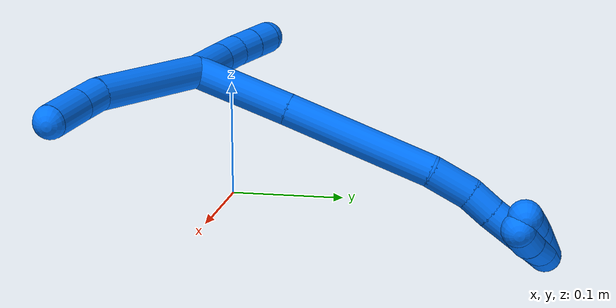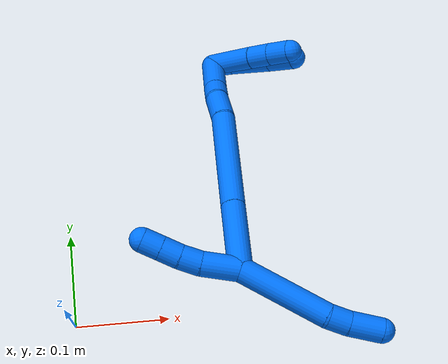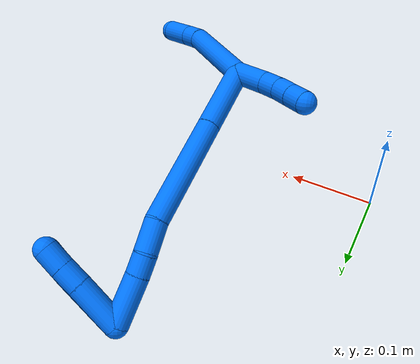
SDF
<sdf version="1.7">
 <world name="default">
  <model name="14">
   <static>0</static>
   <link name="14">
    <collision name="collision-cylinder-e_1_2_8">
     <pose>-0.009093 -0.029189 0.036197 0.67862 -0.193104 -0.068344</pose>
     <geometry><cylinder><radius>0.0125</radius><length>0.094761</length></cylinder></geometry>
     <surface>
      <friction><ode><mu>1.16</mu><mu2>1.16</mu2><slip1>0</slip1><slip2>0</slip2></ode></friction>
      <contact><ode><kp>1e+06</kp><kd>1</kd><max_vel>0</max_vel><min_depth>0.001</min_depth></ode></contact>
     </surface>
    </collision>
    <visual name="visual-cylinder-e_1_2_8">
     <pose>-0.009093 -0.029189 0.036197 0.67862 -0.193104 -0.068344</pose>
     <geometry><cylinder><radius>0.0125</radius><length>0.094761</length></cylinder></geometry>
     <material><ambient>0 0.462745 1 1</ambient></material>
    </visual>
    <collision name="collision-cylinder-e_2_8_9">
     <pose>-0.018167 -0.063755 0.081705 0.523807 0.001696 0.000455</pose>
     <geometry><cylinder><radius>0.0125</radius><length>0.021504</length></cylinder></geometry>
     <surface>
      <friction><ode><mu>1.16</mu><mu2>1.16</mu2><slip1>0</slip1><slip2>0</slip2></ode></friction>
      <contact><ode><kp>1e+06</kp><kd>1</kd><max_vel>0</max_vel><min_depth>0.001</min_depth></ode></contact>
     </surface>
    </collision>
    <visual name="visual-cylinder-e_2_8_9">
     <pose>-0.018167 -0.063755 0.081705 0.523807 0.001696 0.000455</pose>
     <geometry><cylinder><radius>0.0125</radius><length>0.021504</length></cylinder></geometry>
     <material><ambient>0 0.462745 1 1</ambient></material>
    </visual>
    <collision name="collision-cylinder-e_3_9_6">
     <pose>-0.01857 -0.075623 0.106579 0.39507 -0.024967 -0.004997</pose>
     <geometry><cylinder><radius>0.0125</radius><length>0.033735</length></cylinder></geometry>
     <surface>
      <friction><ode><mu>1.16</mu><mu2>1.16</mu2><slip1>0</slip1><slip2>0</slip2></ode></friction>
      <contact><ode><kp>1e+06</kp><kd>1</kd><max_vel>0</max_vel><min_depth>0.001</min_depth></ode></contact>
     </surface>
    </collision>
    <visual name="visual-cylinder-e_3_9_6">
     <pose>-0.01857 -0.075623 0.106579 0.39507 -0.024967 -0.004997</pose>
     <geometry><cylinder><radius>0.0125</radius><length>0.033735</length></cylinder></geometry>
     <material><ambient>0 0.462745 1 1</ambient></material>
    </visual>
    <collision name="collision-cylinder-e_1_2_10">
     <pose>0.001616 0.00616 -0.018259 -2.81621 0.083656 -0.499311</pose>
     <geometry><cylinder><radius>0.0125</radius><length>0.038675</length></cylinder></geometry>
     <surface>
      <friction><ode><mu>1.16</mu><mu2>1.16</mu2><slip1>0</slip1><slip2>0</slip2></ode></friction>
      <contact><ode><kp>1e+06</kp><kd>1</kd><max_vel>0</max_vel><min_depth>0.001</min_depth></ode></contact>
     </surface>
    </collision>
    <visual name="visual-cylinder-e_1_2_10">
     <pose>0.001616 0.00616 -0.018259 -2.81621 0.083656 -0.499311</pose>
     <geometry><cylinder><radius>0.0125</radius><length>0.038675</length></cylinder></geometry>
     <material><ambient>0 0.462745 1 1</ambient></material>
    </visual>
    <collision name="collision-cylinder-e_2_10_11">
     <pose>0.003762 0.017412 -0.045847 -2.64199 0.049896 -0.194991</pose>
     <geometry><cylinder><radius>0.0125</radius><length>0.021282</length></cylinder></geometry>
     <surface>
      <friction><ode><mu>1.16</mu><mu2>1.16</mu2><slip1>0</slip1><slip2>0</slip2></ode></friction>
      <contact><ode><kp>1e+06</kp><kd>1</kd><max_vel>0</max_vel><min_depth>0.001</min_depth></ode></contact>
     </surface>
    </collision>
    <visual name="visual-cylinder-e_2_10_11">
     <pose>0.003762 0.017412 -0.045847 -2.64199 0.049896 -0.194991</pose>
     <geometry><cylinder><radius>0.0125</radius><length>0.021282</length></cylinder></geometry>
     <material><ambient>0 0.462745 1 1</ambient></material>
    </visual>
    <collision name="collision-cylinder-e_3_11_12">
     <pose>0.004991 0.028165 -0.0634 -2.53872 0.069824 -0.223732</pose>
     <geometry><cylinder><radius>0.0125</radius><length>0.020019</length></cylinder></geometry>
     <surface>
      <friction><ode><mu>1.16</mu><mu2>1.16</mu2><slip1>0</slip1><slip2>0</slip2></ode></friction>
      <contact><ode><kp>1e+06</kp><kd>1</kd><max_vel>0</max_vel><min_depth>0.001</min_depth></ode></contact>
     </surface>
    </collision>
    <visual name="visual-cylinder-e_3_11_12">
     <pose>0.004991 0.028165 -0.0634 -2.53872 0.069824 -0.223732</pose>
     <geometry><cylinder><radius>0.0125</radius><length>0.020019</length></cylinder></geometry>
     <material><ambient>0 0.462745 1 1</ambient></material>
    </visual>
    <collision name="collision-cylinder-e_4_12_5">
     <pose>0.006413 0.039432 -0.079889 -2.54552 0.072294 -0.234368</pose>
     <geometry><cylinder><radius>0.0125</radius><length>0.020024</length></cylinder></geometry>
     <surface>
      <friction><ode><mu>1.16</mu><mu2>1.16</mu2><slip1>0</slip1><slip2>0</slip2></ode></friction>
      <contact><ode><kp>1e+06</kp><kd>1</kd><max_vel>0</max_vel><min_depth>0.001</min_depth></ode></contact>
     </surface>
    </collision>
    <visual name="visual-cylinder-e_4_12_5">
     <pose>0.006413 0.039432 -0.079889 -2.54552 0.072294 -0.234368</pose>
     <geometry><cylinder><radius>0.0125</radius><length>0.020024</length></cylinder></geometry>
     <material><ambient>0 0.462745 1 1</ambient></material>
    </visual>
    <collision name="collision-cylinder-e_1_2_13">
     <pose>0.02164 0.030384 0.00512 -1.40386 0.612275 -0.522331</pose>
     <geometry><cylinder><radius>0.0125</radius><length>0.075304</length></cylinder></geometry>
     <surface>
      <friction><ode><mu>1.16</mu><mu2>1.16</mu2><slip1>0</slip1><slip2>0</slip2></ode></friction>
      <contact><ode><kp>1e+06</kp><kd>1</kd><max_vel>0</max_vel><min_depth>0.001</min_depth></ode></contact>
     </surface>
    </collision>
    <visual name="visual-cylinder-e_1_2_13">
     <pose>0.02164 0.030384 0.00512 -1.40386 0.612275 -0.522331</pose>
     <geometry><cylinder><radius>0.0125</radius><length>0.075304</length></cylinder></geometry>
     <material><ambient>0 0.462745 1 1</ambient></material>
    </visual>
    <collision name="collision-cylinder-e_2_13_14">
     <pose>0.077596 0.10781 0.018519 -1.39658 0.622993 -0.527903</pose>
     <geometry><cylinder><radius>0.0125</radius><length>0.117628</length></cylinder></geometry>
     <surface>
      <friction><ode><mu>1.16</mu><mu2>1.16</mu2><slip1>0</slip1><slip2>0</slip2></ode></friction>
      <contact><ode><kp>1e+06</kp><kd>1</kd><max_vel>0</max_vel><min_depth>0.001</min_depth></ode></contact>
     </surface>
    </collision>
    <visual name="visual-cylinder-e_2_13_14">
     <pose>0.077596 0.10781 0.018519 -1.39658 0.622993 -0.527903</pose>
     <geometry><cylinder><radius>0.0125</radius><length>0.117628</length></cylinder></geometry>
     <material><ambient>0 0.462745 1 1</ambient></material>
    </visual>
    <collision name="collision-cylinder-e_3_14_15">
     <pose>0.123902 0.166735 0.027179 -1.53885 0.789623 -0.767186</pose>
     <geometry><cylinder><radius>0.0125</radius><length>0.033771</length></cylinder></geometry>
     <surface>
      <friction><ode><mu>1.16</mu><mu2>1.16</mu2><slip1>0</slip1><slip2>0</slip2></ode></friction>
      <contact><ode><kp>1e+06</kp><kd>1</kd><max_vel>0</max_vel><min_depth>0.001</min_depth></ode></contact>
     </surface>
    </collision>
    <visual name="visual-cylinder-e_3_14_15">
     <pose>0.123902 0.166735 0.027179 -1.53885 0.789623 -0.767186</pose>
     <geometry><cylinder><radius>0.0125</radius><length>0.033771</length></cylinder></geometry>
     <material><ambient>0 0.462745 1 1</ambient></material>
    </visual>
    <collision name="collision-cylinder-e_4_15_16">
     <pose>0.144948 0.184805 0.029 -1.34182 0.959082 -0.782927</pose>
     <geometry><cylinder><radius>0.0125</radius><length>0.022124</length></cylinder></geometry>
     <surface>
      <friction><ode><mu>1.16</mu><mu2>1.16</mu2><slip1>0</slip1><slip2>0</slip2></ode></friction>
      <contact><ode><kp>1e+06</kp><kd>1</kd><max_vel>0</max_vel><min_depth>0.001</min_depth></ode></contact>
     </surface>
    </collision>
    <visual name="visual-cylinder-e_4_15_16">
     <pose>0.144948 0.184805 0.029 -1.34182 0.959082 -0.782927</pose>
     <geometry><cylinder><radius>0.0125</radius><length>0.022124</length></cylinder></geometry>
     <material><ambient>0 0.462745 1 1</ambient></material>
    </visual>
    <collision name="collision-cylinder-e_5_16_1">
     <pose>0.173855 0.206632 0.034439 -1.32062 0.888051 -0.707764</pose>
     <geometry><cylinder><radius>0.0125</radius><length>0.051173</length></cylinder></geometry>
     <surface>
      <friction><ode><mu>1.16</mu><mu2>1.16</mu2><slip1>0</slip1><slip2>0</slip2></ode></friction>
      <contact><ode><kp>1e+06</kp><kd>1</kd><max_vel>0</max_vel><min_depth>0.001</min_depth></ode></contact>
     </surface>
    </collision>
    <visual name="visual-cylinder-e_5_16_1">
     <pose>0.173855 0.206632 0.034439 -1.32062 0.888051 -0.707764</pose>
     <geometry><cylinder><radius>0.0125</radius><length>0.051173</length></cylinder></geometry>
     <material><ambient>0 0.462745 1 1</ambient></material>
    </visual>
    <collision name="collision-cylinder-e_1_1_17">
     <pose>0.186583 0.221095 0.04842 0.11742 -0.616393 -0.037418</pose>
     <geometry><cylinder><radius>0.0125</radius><length>0.024643</length></cylinder></geometry>
     <surface>
      <friction><ode><mu>1.16</mu><mu2>1.16</mu2><slip1>0</slip1><slip2>0</slip2></ode></friction>
      <contact><ode><kp>1e+06</kp><kd>1</kd><max_vel>0</max_vel><min_depth>0.001</min_depth></ode></contact>
     </surface>
    </collision>
    <visual name="visual-cylinder-e_1_1_17">
     <pose>0.186583 0.221095 0.04842 0.11742 -0.616393 -0.037418</pose>
     <geometry><cylinder><radius>0.0125</radius><length>0.024643</length></cylinder></geometry>
     <material><ambient>0 0.462745 1 1</ambient></material>
    </visual>
    <collision name="collision-cylinder-e_2_17_18">
     <pose>0.167543 0.216751 0.077446 0.16478 -0.553122 -0.046868</pose>
     <geometry><cylinder><radius>0.0125</radius><length>0.04537</length></cylinder></geometry>
     <surface>
      <friction><ode><mu>1.16</mu><mu2>1.16</mu2><slip1>0</slip1><slip2>0</slip2></ode></friction>
      <contact><ode><kp>1e+06</kp><kd>1</kd><max_vel>0</max_vel><min_depth>0.001</min_depth></ode></contact>
     </surface>
    </collision>
    <visual name="visual-cylinder-e_2_17_18">
     <pose>0.167543 0.216751 0.077446 0.16478 -0.553122 -0.046868</pose>
     <geometry><cylinder><radius>0.0125</radius><length>0.04537</length></cylinder></geometry>
     <material><ambient>0 0.462745 1 1</ambient></material>
    </visual>
    <collision name="collision-cylinder-e_3_18_4">
     <pose>0.146102 0.211728 0.107917 0.161009 -0.688274 -0.057814</pose>
     <geometry><cylinder><radius>0.0125</radius><length>0.029987</length></cylinder></geometry>
     <surface>
      <friction><ode><mu>1.16</mu><mu2>1.16</mu2><slip1>0</slip1><slip2>0</slip2></ode></friction>
      <contact><ode><kp>1e+06</kp><kd>1</kd><max_vel>0</max_vel><min_depth>0.001</min_depth></ode></contact>
     </surface>
    </collision>
    <visual name="visual-cylinder-e_3_18_4">
     <pose>0.146102 0.211728 0.107917 0.161009 -0.688274 -0.057814</pose>
     <geometry><cylinder><radius>0.0125</radius><length>0.029987</length></cylinder></geometry>
     <material><ambient>0 0.462745 1 1</ambient></material>
    </visual>
    <collision name="collision-cylinder-e_1_1_19">
     <pose>0.176588 0.221086 0.058226 0.059885 -0.712226 -0.022281</pose>
     <geometry><cylinder><radius>0.0125</radius><length>0.052387</length></cylinder></geometry>
     <surface>
      <friction><ode><mu>1.16</mu><mu2>1.16</mu2><slip1>0</slip1><slip2>0</slip2></ode></friction>
      <contact><ode><kp>1e+06</kp><kd>1</kd><max_vel>0</max_vel><min_depth>0.001</min_depth></ode></contact>
     </surface>
    </collision>
    <visual name="visual-cylinder-e_1_1_19">
     <pose>0.176588 0.221086 0.058226 0.059885 -0.712226 -0.022281</pose>
     <geometry><cylinder><radius>0.0125</radius><length>0.052387</length></cylinder></geometry>
     <material><ambient>0 0.462745 1 1</ambient></material>
    </visual>
    <collision name="collision-cylinder-e_2_19_20">
     <pose>0.15232 0.21919 0.087269 0.076537 -0.656535 -0.026079</pose>
     <geometry><cylinder><radius>0.0125</radius><length>0.02343</length></cylinder></geometry>
     <surface>
      <friction><ode><mu>1.16</mu><mu2>1.16</mu2><slip1>0</slip1><slip2>0</slip2></ode></friction>
      <contact><ode><kp>1e+06</kp><kd>1</kd><max_vel>0</max_vel><min_depth>0.001</min_depth></ode></contact>
     </surface>
    </collision>
    <visual name="visual-cylinder-e_2_19_20">
     <pose>0.15232 0.21919 0.087269 0.076537 -0.656535 -0.026079</pose>
     <geometry><cylinder><radius>0.0125</radius><length>0.02343</length></cylinder></geometry>
     <material><ambient>0 0.462745 1 1</ambient></material>
    </visual>
    <collision name="collision-cylinder-e_3_20_3">
     <pose>0.137581 0.217441 0.105878 0.110689 -0.678398 -0.03909</pose>
     <geometry><cylinder><radius>0.0125</radius><length>0.024183</length></cylinder></geometry>
     <surface>
      <friction><ode><mu>1.16</mu><mu2>1.16</mu2><slip1>0</slip1><slip2>0</slip2></ode></friction>
      <contact><ode><kp>1e+06</kp><kd>1</kd><max_vel>0</max_vel><min_depth>0.001</min_depth></ode></contact>
     </surface>
    </collision>
    <visual name="visual-cylinder-e_3_20_3">
     <pose>0.137581 0.217441 0.105878 0.110689 -0.678398 -0.03909</pose>
     <geometry><cylinder><radius>0.0125</radius><length>0.024183</length></cylinder></geometry>
     <material><ambient>0 0.462745 1 1</ambient></material>
    </visual>
    <collision name="collision-sphere-3">
     <pose>0.129993 0.216401 0.115235 0 -0 0</pose>
     <geometry><sphere><radius>0.0125</radius></sphere></geometry>
     <surface>
      <friction><ode><mu>1.16</mu><mu2>1.16</mu2><slip1>0</slip1><slip2>0</slip2></ode></friction>
      <contact><ode><kp>1e+06</kp><kd>1</kd><max_vel>0</max_vel><min_depth>0.001</min_depth></ode></contact>
     </surface>
    </collision>
    <visual name="visual-sphere-3">
     <pose>0.129993 0.216401 0.115235 0 -0 0</pose>
     <geometry><sphere><radius>0.0125</radius></sphere></geometry>
     <material><ambient>0 0.462745 1 1</ambient></material>
    </visual>
    <collision name="collision-sphere-20">
     <pose>0.145169 0.218481 0.096522 0 -0 0</pose>
     <geometry><sphere><radius>0.0125</radius></sphere></geometry>
     <surface>
      <friction><ode><mu>1.16</mu><mu2>1.16</mu2><slip1>0</slip1><slip2>0</slip2></ode></friction>
      <contact><ode><kp>1e+06</kp><kd>1</kd><max_vel>0</max_vel><min_depth>0.001</min_depth></ode></contact>
     </surface>
    </collision>
    <visual name="visual-sphere-20">
     <pose>0.145169 0.218481 0.096522 0 -0 0</pose>
     <geometry><sphere><radius>0.0125</radius></sphere></geometry>
     <material><ambient>0 0.462745 1 1</ambient></material>
    </visual>
    <collision name="collision-sphere-19">
     <pose>0.15947 0.2199 0.078017 0 -0 0</pose>
     <geometry><sphere><radius>0.0125</radius></sphere></geometry>
     <surface>
      <friction><ode><mu>1.16</mu><mu2>1.16</mu2><slip1>0</slip1><slip2>0</slip2></ode></friction>
      <contact><ode><kp>1e+06</kp><kd>1</kd><max_vel>0</max_vel><min_depth>0.001</min_depth></ode></contact>
     </surface>
    </collision>
    <visual name="visual-sphere-19">
     <pose>0.15947 0.2199 0.078017 0 -0 0</pose>
     <geometry><sphere><radius>0.0125</radius></sphere></geometry>
     <material><ambient>0 0.462745 1 1</ambient></material>
    </visual>
    <collision name="collision-sphere-11">
     <pose>0.004293 0.022503 -0.055176 0 -0 0</pose>
     <geometry><sphere><radius>0.0125</radius></sphere></geometry>
     <surface>
      <friction><ode><mu>1.16</mu><mu2>1.16</mu2><slip1>0</slip1><slip2>0</slip2></ode></friction>
      <contact><ode><kp>1e+06</kp><kd>1</kd><max_vel>0</max_vel><min_depth>0.001</min_depth></ode></contact>
     </surface>
    </collision>
    <visual name="visual-sphere-11">
     <pose>0.004293 0.022503 -0.055176 0 -0 0</pose>
     <geometry><sphere><radius>0.0125</radius></sphere></geometry>
     <material><ambient>0 0.462745 1 1</ambient></material>
    </visual>
    <collision name="collision-sphere-10">
     <pose>0.003232 0.01232 -0.036518 0 -0 0</pose>
     <geometry><sphere><radius>0.0125</radius></sphere></geometry>
     <surface>
      <friction><ode><mu>1.16</mu><mu2>1.16</mu2><slip1>0</slip1><slip2>0</slip2></ode></friction>
      <contact><ode><kp>1e+06</kp><kd>1</kd><max_vel>0</max_vel><min_depth>0.001</min_depth></ode></contact>
     </surface>
    </collision>
    <visual name="visual-sphere-10">
     <pose>0.003232 0.01232 -0.036518 0 -0 0</pose>
     <geometry><sphere><radius>0.0125</radius></sphere></geometry>
     <material><ambient>0 0.462745 1 1</ambient></material>
    </visual>
    <collision name="collision-sphere-6">
     <pose>-0.018991 -0.082113 0.122142 0 -0 0</pose>
     <geometry><sphere><radius>0.0125</radius></sphere></geometry>
     <surface>
      <friction><ode><mu>1.16</mu><mu2>1.16</mu2><slip1>0</slip1><slip2>0</slip2></ode></friction>
      <contact><ode><kp>1e+06</kp><kd>1</kd><max_vel>0</max_vel><min_depth>0.001</min_depth></ode></contact>
     </surface>
    </collision>
    <visual name="visual-sphere-6">
     <pose>-0.018991 -0.082113 0.122142 0 -0 0</pose>
     <geometry><sphere><radius>0.0125</radius></sphere></geometry>
     <material><ambient>0 0.462745 1 1</ambient></material>
    </visual>
    <collision name="collision-sphere-9">
     <pose>-0.018149 -0.069133 0.091015 0 -0 0</pose>
     <geometry><sphere><radius>0.0125</radius></sphere></geometry>
     <surface>
      <friction><ode><mu>1.16</mu><mu2>1.16</mu2><slip1>0</slip1><slip2>0</slip2></ode></friction>
      <contact><ode><kp>1e+06</kp><kd>1</kd><max_vel>0</max_vel><min_depth>0.001</min_depth></ode></contact>
     </surface>
    </collision>
    <visual name="visual-sphere-9">
     <pose>-0.018149 -0.069133 0.091015 0 -0 0</pose>
     <geometry><sphere><radius>0.0125</radius></sphere></geometry>
     <material><ambient>0 0.462745 1 1</ambient></material>
    </visual>
    <collision name="collision-sphere-2">
     <geometry><sphere><radius>0.0125</radius></sphere></geometry>
     <surface>
      <friction><ode><mu>1.16</mu><mu2>1.16</mu2><slip1>0</slip1><slip2>0</slip2></ode></friction>
      <contact><ode><kp>1e+06</kp><kd>1</kd><max_vel>0</max_vel><min_depth>0.001</min_depth></ode></contact>
     </surface>
    </collision>
    <visual name="visual-sphere-2">
     <geometry><sphere><radius>0.0125</radius></sphere></geometry>
     <material><ambient>0 0.462745 1 1</ambient></material>
    </visual>
    <collision name="collision-sphere-8">
     <pose>-0.018185 -0.058378 0.072394 0 -0 0</pose>
     <geometry><sphere><radius>0.0125</radius></sphere></geometry>
     <surface>
      <friction><ode><mu>1.16</mu><mu2>1.16</mu2><slip1>0</slip1><slip2>0</slip2></ode></friction>
      <contact><ode><kp>1e+06</kp><kd>1</kd><max_vel>0</max_vel><min_depth>0.001</min_depth></ode></contact>
     </surface>
    </collision>
    <visual name="visual-sphere-8">
     <pose>-0.018185 -0.058378 0.072394 0 -0 0</pose>
     <geometry><sphere><radius>0.0125</radius></sphere></geometry>
     <material><ambient>0 0.462745 1 1</ambient></material>
    </visual>
    <collision name="collision-sphere-12">
     <pose>0.00569 0.033827 -0.071625 0 -0 0</pose>
     <geometry><sphere><radius>0.0125</radius></sphere></geometry>
     <surface>
      <friction><ode><mu>1.16</mu><mu2>1.16</mu2><slip1>0</slip1><slip2>0</slip2></ode></friction>
      <contact><ode><kp>1e+06</kp><kd>1</kd><max_vel>0</max_vel><min_depth>0.001</min_depth></ode></contact>
     </surface>
    </collision>
    <visual name="visual-sphere-12">
     <pose>0.00569 0.033827 -0.071625 0 -0 0</pose>
     <geometry><sphere><radius>0.0125</radius></sphere></geometry>
     <material><ambient>0 0.462745 1 1</ambient></material>
    </visual>
    <collision name="collision-sphere-5">
     <pose>0.007136 0.045038 -0.088152 0 -0 0</pose>
     <geometry><sphere><radius>0.0125</radius></sphere></geometry>
     <surface>
      <friction><ode><mu>1.16</mu><mu2>1.16</mu2><slip1>0</slip1><slip2>0</slip2></ode></friction>
      <contact><ode><kp>1e+06</kp><kd>1</kd><max_vel>0</max_vel><min_depth>0.001</min_depth></ode></contact>
     </surface>
    </collision>
    <visual name="visual-sphere-5">
     <pose>0.007136 0.045038 -0.088152 0 -0 0</pose>
     <geometry><sphere><radius>0.0125</radius></sphere></geometry>
     <material><ambient>0 0.462745 1 1</ambient></material>
    </visual>
    <collision name="collision-sphere-13">
     <pose>0.043279 0.060768 0.01024 0 -0 0</pose>
     <geometry><sphere><radius>0.0125</radius></sphere></geometry>
     <surface>
      <friction><ode><mu>1.16</mu><mu2>1.16</mu2><slip1>0</slip1><slip2>0</slip2></ode></friction>
      <contact><ode><kp>1e+06</kp><kd>1</kd><max_vel>0</max_vel><min_depth>0.001</min_depth></ode></contact>
     </surface>
    </collision>
    <visual name="visual-sphere-13">
     <pose>0.043279 0.060768 0.01024 0 -0 0</pose>
     <geometry><sphere><radius>0.0125</radius></sphere></geometry>
     <material><ambient>0 0.462745 1 1</ambient></material>
    </visual>
    <collision name="collision-sphere-14">
     <pose>0.111912 0.154852 0.026799 0 -0 0</pose>
     <geometry><sphere><radius>0.0125</radius></sphere></geometry>
     <surface>
      <friction><ode><mu>1.16</mu><mu2>1.16</mu2><slip1>0</slip1><slip2>0</slip2></ode></friction>
      <contact><ode><kp>1e+06</kp><kd>1</kd><max_vel>0</max_vel><min_depth>0.001</min_depth></ode></contact>
     </surface>
    </collision>
    <visual name="visual-sphere-14">
     <pose>0.111912 0.154852 0.026799 0 -0 0</pose>
     <geometry><sphere><radius>0.0125</radius></sphere></geometry>
     <material><ambient>0 0.462745 1 1</ambient></material>
    </visual>
    <collision name="collision-sphere-15">
     <pose>0.135892 0.178618 0.027558 0 -0 0</pose>
     <geometry><sphere><radius>0.0125</radius></sphere></geometry>
     <surface>
      <friction><ode><mu>1.16</mu><mu2>1.16</mu2><slip1>0</slip1><slip2>0</slip2></ode></friction>
      <contact><ode><kp>1e+06</kp><kd>1</kd><max_vel>0</max_vel><min_depth>0.001</min_depth></ode></contact>
     </surface>
    </collision>
    <visual name="visual-sphere-15">
     <pose>0.135892 0.178618 0.027558 0 -0 0</pose>
     <geometry><sphere><radius>0.0125</radius></sphere></geometry>
     <material><ambient>0 0.462745 1 1</ambient></material>
    </visual>
    <collision name="collision-sphere-16">
     <pose>0.154004 0.190992 0.030442 0 -0 0</pose>
     <geometry><sphere><radius>0.0125</radius></sphere></geometry>
     <surface>
      <friction><ode><mu>1.16</mu><mu2>1.16</mu2><slip1>0</slip1><slip2>0</slip2></ode></friction>
      <contact><ode><kp>1e+06</kp><kd>1</kd><max_vel>0</max_vel><min_depth>0.001</min_depth></ode></contact>
     </surface>
    </collision>
    <visual name="visual-sphere-16">
     <pose>0.154004 0.190992 0.030442 0 -0 0</pose>
     <geometry><sphere><radius>0.0125</radius></sphere></geometry>
     <material><ambient>0 0.462745 1 1</ambient></material>
    </visual>
    <collision name="collision-sphere-1">
     <pose>0.193706 0.222273 0.038436 0 -0 0</pose>
     <geometry><sphere><radius>0.0125</radius></sphere></geometry>
     <surface>
      <friction><ode><mu>1.16</mu><mu2>1.16</mu2><slip1>0</slip1><slip2>0</slip2></ode></friction>
      <contact><ode><kp>1e+06</kp><kd>1</kd><max_vel>0</max_vel><min_depth>0.001</min_depth></ode></contact>
     </surface>
    </collision>
    <visual name="visual-sphere-1">
     <pose>0.193706 0.222273 0.038436 0 -0 0</pose>
     <geometry><sphere><radius>0.0125</radius></sphere></geometry>
     <material><ambient>0 0.462745 1 1</ambient></material>
    </visual>
    <collision name="collision-sphere-18">
     <pose>0.155626 0.213585 0.096487 0 -0 0</pose>
     <geometry><sphere><radius>0.0125</radius></sphere></geometry>
     <surface>
      <friction><ode><mu>1.16</mu><mu2>1.16</mu2><slip1>0</slip1><slip2>0</slip2></ode></friction>
      <contact><ode><kp>1e+06</kp><kd>1</kd><max_vel>0</max_vel><min_depth>0.001</min_depth></ode></contact>
     </surface>
    </collision>
    <visual name="visual-sphere-18">
     <pose>0.155626 0.213585 0.096487 0 -0 0</pose>
     <geometry><sphere><radius>0.0125</radius></sphere></geometry>
     <material><ambient>0 0.462745 1 1</ambient></material>
    </visual>
    <collision name="collision-sphere-17">
     <pose>0.17946 0.219917 0.058405 0 -0 0</pose>
     <geometry><sphere><radius>0.0125</radius></sphere></geometry>
     <surface>
      <friction><ode><mu>1.16</mu><mu2>1.16</mu2><slip1>0</slip1><slip2>0</slip2></ode></friction>
      <contact><ode><kp>1e+06</kp><kd>1</kd><max_vel>0</max_vel><min_depth>0.001</min_depth></ode></contact>
     </surface>
    </collision>
    <visual name="visual-sphere-17">
     <pose>0.17946 0.219917 0.058405 0 -0 0</pose>
     <geometry><sphere><radius>0.0125</radius></sphere></geometry>
     <material><ambient>0 0.462745 1 1</ambient></material>
    </visual>
    <collision name="collision-sphere-4">
     <pose>0.136577 0.209872 0.119348 0 -0 0</pose>
     <geometry><sphere><radius>0.0125</radius></sphere></geometry>
     <surface>
      <friction><ode><mu>1.16</mu><mu2>1.16</mu2><slip1>0</slip1><slip2>0</slip2></ode></friction>
      <contact><ode><kp>1e+06</kp><kd>1</kd><max_vel>0</max_vel><min_depth>0.001</min_depth></ode></contact>
     </surface>
    </collision>
    <visual name="visual-sphere-4">
     <pose>0.136577 0.209872 0.119348 0 -0 0</pose>
     <geometry><sphere><radius>0.0125</radius></sphere></geometry>
     <material><ambient>0 0.462745 1 1</ambient></material>
    </visual>
    <inertial>
     <pose>0.077686 0.098859 0.034288 0 -0 0</pose>
     <mass>0.75</mass>
     <inertia>
      <ixx>0.000164</ixx>
      <ixy>0</ixy>
      <ixz>0</ixz>
      <iyy>0.000101</iyy>
      <iyz>0</iyz>
      <izz>-0.000176</izz>
     </inertia>
    </inertial>
   </link>
   <pose>0.176322 0.015515 0.144363 1.88138 1.29489 1.9865</pose>
  </model>
 </world>
</sdf>
